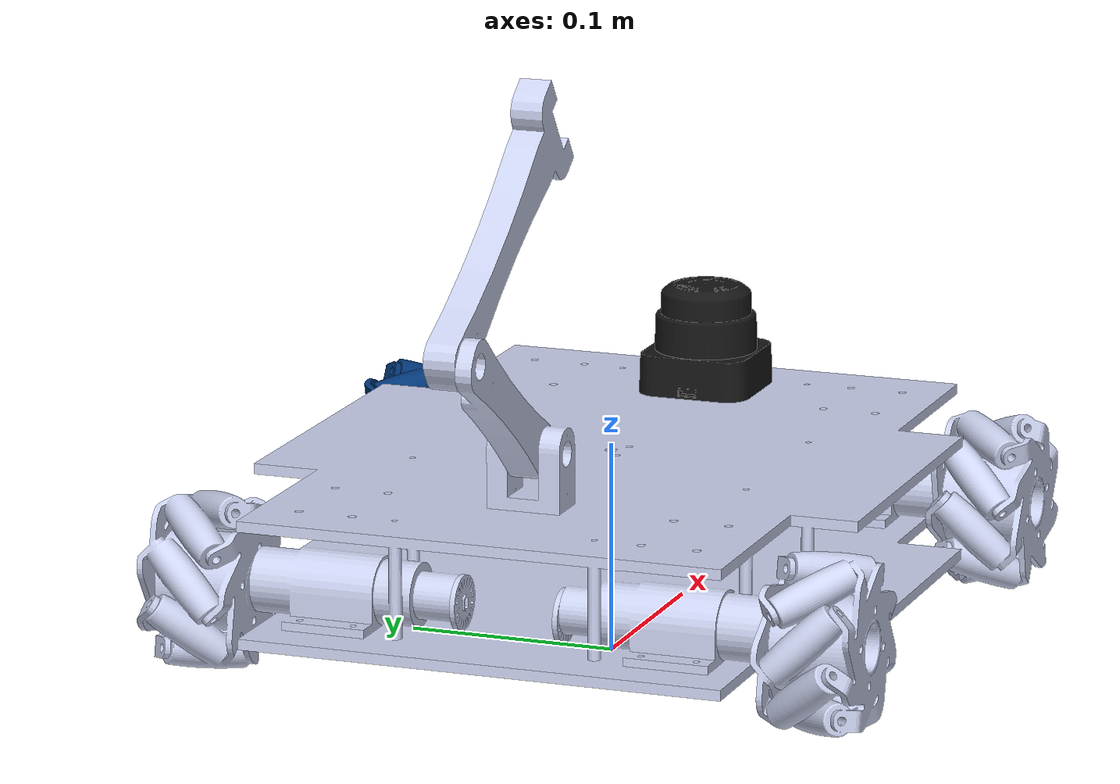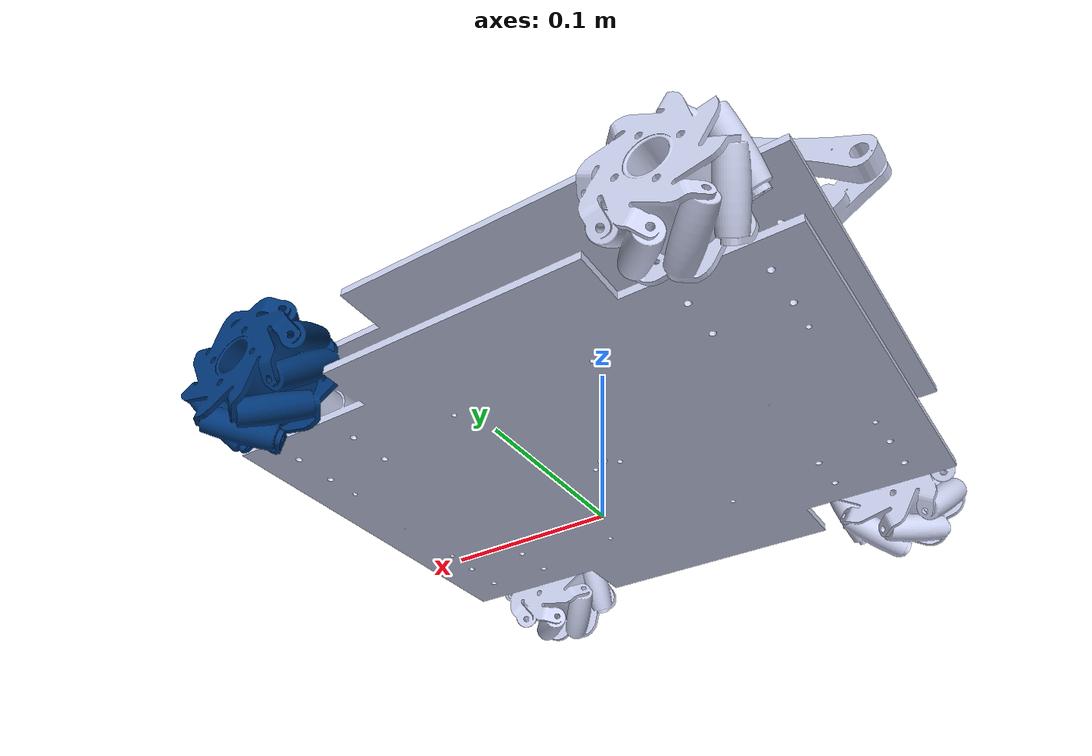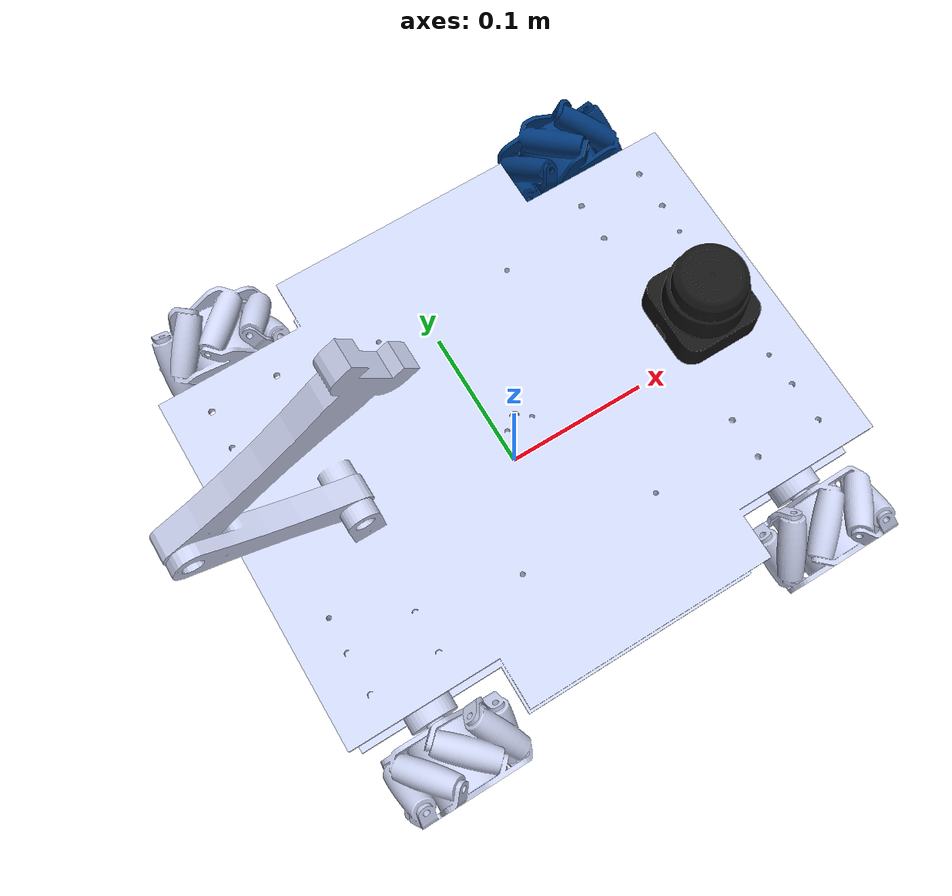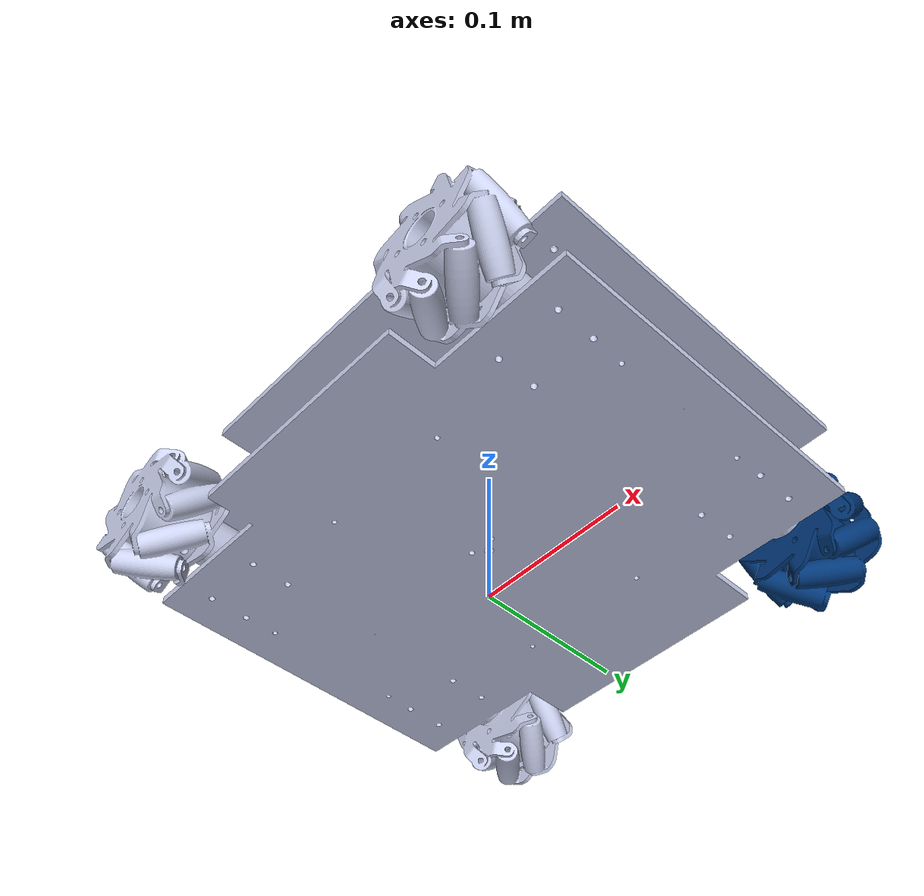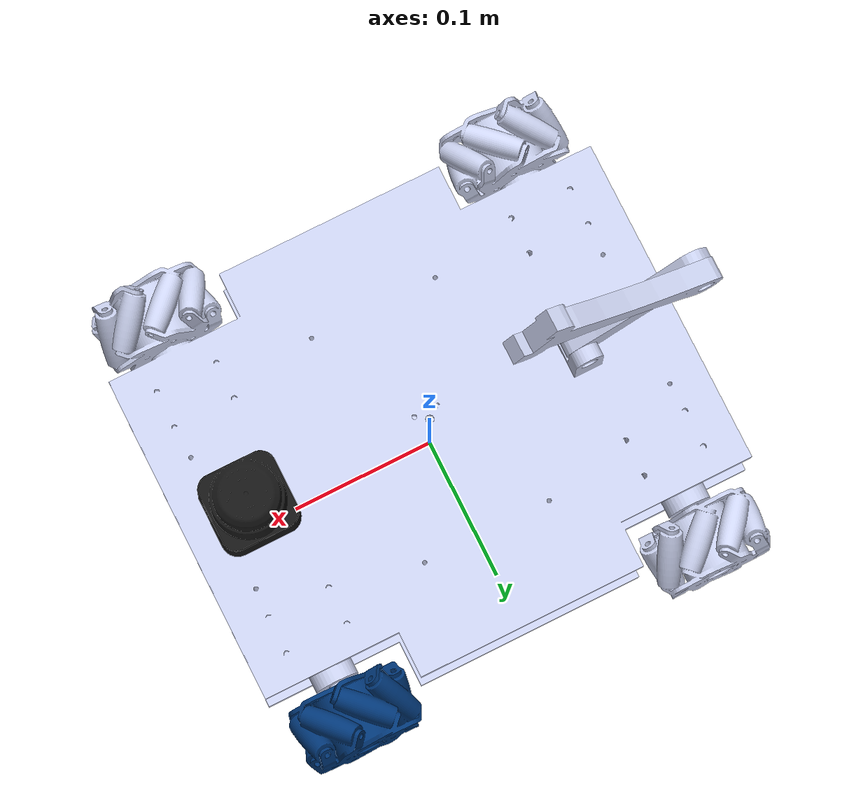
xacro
<?xml version="1.0"?>
<robot xmlns:xacro="http://www.ros.org/wiki/xacro" name="meca">

    <!-- ======================================= Model include  ====================================-->

    <!-- Base -->
    <xacro:include filename="$(find meca)/xacro/model/base/base.xacro"/>

    <!-- Wheel -->
    <xacro:include filename="$(find meca)/xacro/model/wheel/wheel.xacro"/>

    <!-- Wheel1 -->

    <!-- lidar -->
    <xacro:include filename="$(find meca)/xacro/model/sensor/lidar/lidar.xacro"/>

    <!-- imu -->
    <xacro:include filename="$(find meca)/xacro/model/sensor/imu/imu.xacro"/>

    <!-- encoder -->
    <xacro:include filename="$(find meca)/xacro/model/sensor/encoder/encoder.xacro"/>

    <!-- arm -->
    <xacro:include filename="$(find meca)/xacro/model/arm/arm.xacro"/>

    <!-- ======================================= Gazebo include  ====================================-->

    <!-- Transmission -->
    <xacro:include filename="$(find meca)/xacro/gazebo/transmission/transmission.xacro"/>

    <!-- Plugin -->
    <xacro:include filename="$(find meca)/xacro/gazebo/plugin/plugin.xacro"/>

    <!-- ======================================= Model Macro  ====================================-->

    <!-- Base -->
    <xacro:base/>

    <!-- Wheel -->
    <xacro:wheel/>

    <!-- Wheel1 -->

    <!-- RplidarA1 -->
    <xacro:lidar/>

    <!-- imu -->
    <xacro:imu/>

    <!-- encode -->

    <xacro:encoder/>

    <!-- arm -->
    <xacro:arm/>

    <!-- ======================================= Gazebo Macro  ====================================-->

    <!-- Transmission -->
    <xacro:transmission_gazebo/>

    <!-- Plugin -->
    <xacro:gazebo_plugin/>

</robot>

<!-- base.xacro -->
<robot xmlns:xacro="http://www.ros.org/wiki/xacro">
    <xacro:macro name="base">

        <link name="base_footprint"></link>

        <joint name="joint_base_footprint" type="fixed">
            <parent link="base_footprint"/>
            <child link="base_link"/>
            <origin xyz="0.0 0.0 0.037" rpy="0.0 0.0 0.0"/>
            <limit effort="5.0" velocity="10.0"/>
        </joint>

        <link name="base_link">
            <inertial>
                <origin xyz="-0.0012337 1.0003E-06 0.027856" rpy="0 0 0" />
                <mass value="1.2237" />
                <inertia ixx="0.0053566" ixy="3.6093E-10" ixz="6.2608E-22" iyy="0.0084415" iyz="6.2819E-22" izz="0.013752" />
            </inertial>
            <visual>
                <origin xyz="0 0 0" rpy="0 0 0" />
                <geometry>
                    <mesh filename="package://meca/meshes/base_link.STL" />
                </geometry>
                <material name="">
                    <color rgba="0.79216 0.81961 0.93333 1" />
                </material>
            </visual>
            <collision>
                <origin xyz="0 0 0" rpy="0 0 0" />
                <geometry>
                    <mesh filename="package://meca/meshes/base_link.STL" />
                </geometry>
            </collision>
        </link>
    </xacro:macro>

</robot>

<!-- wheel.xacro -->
<robot xmlns:xacro="http://www.ros.org/wiki/xacro">
  <!-- Macro định nghĩa Roller -->
  <xacro:macro name="wheel">
    <link name="link_left_forward1">
      <inertial>
        <origin xyz="1.0435E-06 4.8329E-05 -0.0023476" rpy="0 0 0" />
        <mass value="0.13253" />
        <inertia ixx="2.8353E-05" ixy="-4.1241E-08" ixz="-4.6777E-08" iyy="2.8355E-05" iyz="4.779E-08" izz="3.4561E-05" />
      </inertial>
      <visual>
        <origin xyz="0 0 0" rpy="0 0 0" />
        <geometry>
          <mesh filename="package://meca/meshes/link_left_forward.STL" />
        </geometry>
        <material name="">
          <color rgba="0 0.21176 0.46667 1" />
        </material>
      </visual>
      <collision>
        <origin xyz="0 0 0" rpy="0 0 0" />
        <geometry>
          <mesh filename="package://meca/meshes/link_left_forward.STL" />
        </geometry>
        <geometry>
          <cylinder>
            <radius>0.05</radius>
            <length>0.02</length>
          </cylinder>
        </geometry>
        <surface>
          <friction>
            <ode>
              <mu>1.5</mu>
              <mu2>0.5</mu2>
            </ode>
          </friction>
        </surface>
        <contact>
          <ode>
            <soft_cfm>0.01</soft_cfm>
            <soft_erp>0.8</soft_erp>
            <kp>1000000</kp>
            <kd>10</kd>
            <max_vel>100.0</max_vel>
            <min_depth>0.001</min_depth>
          </ode>
        </contact>
      </collision>
    </link>
    <joint name="joint_left_forward1" type="continuous">
      <origin xyz="0.12762 0.14948 0.017" rpy="-1.5708 0 0" />
      <parent link="base_link" />
      <child link="link_left_forward1" />
      <axis xyz="0 0 1" />
      <limit effort="20.0" velocity="30.0"/>
    </joint>
    <link name="link_left_back1">
      <inertial>
        <origin xyz="4.3774E-05 2.0509E-05 -0.0023476" rpy="0 0 0" />
        <mass value="0.13253" />
        <inertia ixx="2.8322E-05" ixy="2.5704E-08" ixz="2.2072E-08" iyy="2.8387E-05" iyz="6.3125E-08" izz="3.4561E-05" />
      </inertial>
      <visual>
        <origin xyz="0 0 0" rpy="0 0 0" />
        <geometry>
          <mesh filename="package://meca/meshes/link_left_back.STL" />
        </geometry>
        <material name="">
          <color rgba="0.79216 0.81961 0.93333 1" />
        </material>
      </visual>
      <collision>
        <origin xyz="0 0 0" rpy="0 0 0" />
        <geometry>
          <mesh filename="package://meca/meshes/link_left_back.STL" />
        </geometry>
        <geometry>
          <cylinder>
            <radius>0.05</radius>
            <length>0.02</length>
          </cylinder>
        </geometry>
        <surface>
          <friction>
            <ode>
              <mu>1.5</mu>
              <mu2>0.5</mu2>
            </ode>
          </friction>
        </surface>
        <contact>
          <ode>
            <soft_cfm>0.01</soft_cfm>
            <soft_erp>0.8</soft_erp>
            <kp>1000000</kp>
            <kd>10</kd>
            <max_vel>100.0</max_vel>
            <min_depth>0.001</min_depth>
          </ode>
        </contact>
      </collision>
    </link>
    <joint name="joint_left_back1" type="continuous">
      <origin xyz="-0.12797 0.14948 0.017" rpy="-1.5708 0 0" />
      <parent link="base_link" />
      <child link="link_left_back1" />
      <axis xyz="0 0 1" />
      <limit effort="20.0" velocity="30.0"/>
    </joint>
    <link name="link_right_back1">
      <inertial>
        <origin xyz="1.0435E-06 -4.8329E-05 0.0023476" rpy="0 0 0" />
        <mass value="0.13253" />
        <inertia ixx="2.8353E-05" ixy="4.1241E-08" ixz="4.6777E-08" iyy="2.8355E-05" iyz="4.779E-08" izz="3.4561E-05" />
      </inertial>
      <visual>
        <origin xyz="0 0 0" rpy="0 0 0" />
        <geometry>
          <mesh filename="package://meca/meshes/link_right_back.STL" />
        </geometry>
        <material name="">
          <color rgba="0.79216 0.81961 0.93333 1" />
        </material>
      </visual>
      <collision>
        <origin xyz="0 0 0" rpy="0 0 0" />
        <geometry>
          <mesh filename="package://meca/meshes/link_right_back.STL" />
        </geometry>
        <geometry>
          <cylinder>
            <radius>0.05</radius>
            <length>0.02</length>
          </cylinder>
        </geometry>
        <surface>
          <friction>
            <ode>
              <mu>1.5</mu>
              <mu2>0.5</mu2>
            </ode>
          </friction>
        </surface>
        <contact>
          <ode>
            <soft_cfm>0.01</soft_cfm>
            <soft_erp>0.8</soft_erp>
            <kp>1000000</kp>
            <kd>10</kd>
            <max_vel>100.0</max_vel>
            <min_depth>0.001</min_depth>
          </ode>
        </contact>
      </collision>
    </link>
    <joint name="joint_right_back1" type="continuous">
      <origin xyz="-0.12884 -0.14948 0.017" rpy="-1.5708 0 0" />
      <parent link="base_link" />
      <child link="link_right_back1" />
      <axis xyz="0 0 1" />
      <limit effort="20.0" velocity="30.0"/>
    </joint>
    <link name="link_right_forward1">
      <inertial>
        <origin xyz="4.3774E-05 -2.0509E-05 0.0023476" rpy="0 0 0" />
        <mass value="0.13253" />
        <inertia ixx="2.8322E-05" ixy="-2.5704E-08" ixz="-2.2072E-08" iyy="2.8387E-05" iyz="6.3125E-08" izz="3.4561E-05" />
      </inertial>
      <visual>
        <origin xyz="0 0 0" rpy="0 0 0" />
        <geometry>
          <mesh filename="package://meca/meshes/link_right_forward.STL" />
        </geometry>
        <material name="">
          <color rgba="0.79216 0.81961 0.93333 1" />
        </material>
      </visual>
      <collision>
        <origin xyz="0 0 0" rpy="0 0 0" />
        <geometry>
          <mesh filename="package://meca/meshes/link_right_forward.STL" />
        </geometry>
        <geometry>
          <cylinder>
            <radius>0.05</radius>
            <length>0.02</length>
          </cylinder>
        </geometry>
        <surface>
          <friction>
            <ode>
              <mu>1.5</mu>
              <mu2>0.5</mu2>
            </ode>
          </friction>
        </surface>
        <contact>
          <ode>
            <soft_cfm>0.01</soft_cfm>
            <soft_erp>0.8</soft_erp>
            <kp>1000000</kp>
            <kd>10</kd>
            <max_vel>100.0</max_vel>
            <min_depth>0.001</min_depth>
          </ode>
        </contact>
      </collision>
    </link>
    <joint name="joint_right_forward1" type="continuous">
      <origin xyz="0.12849 -0.14948 0.017" rpy="-1.5708 0 0" />
      <parent link="base_link" />
      <child link="link_right_forward1" />
      <axis xyz="0 0 1" />
      <limit effort="20.0" velocity="30.0"/>
    </joint>

  </xacro:macro>

</robot>

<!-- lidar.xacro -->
<robot xmlns:xacro="http://www.ros.org/wiki/xacro">
    <xacro:macro name="lidar">
        <link name="link_lidar">
            <inertial>
                <origin xyz="-0.00020012 4.1715E-07 0.032146" rpy="0 0 0" />
                <mass value="0.0094944" />
                <inertia ixx="3.8153E-06" ixy="2.9012E-11" ixz="-8.0883E-10" iyy="3.8141E-06" iyz="-2.0759E-11" izz="4.9345E-06" />
            </inertial>
            <visual>
                <origin xyz="0 0 0" rpy="0 0 0" />
                <geometry>
                    <mesh filename="package://meca/meshes/link_lidar.STL" />
                </geometry>
                <material name="">
                    <color rgba="0.082353 0.082353 0.082353 1" />
                </material>
            </visual>
            <collision>
                <origin xyz="0 0 0" rpy="0 0 0" />
                <geometry>
                    <mesh filename="package://meca/meshes/link_lidar.STL" />
                </geometry>
            </collision>
        </link>
        <joint name="joint_lidar" type="fixed">
            <origin xyz="0.12893 -0.0016914 0.0598" rpy="0 0 0" />
            <parent link="base_link" />
            <child link="link_lidar" />
            <axis xyz="0 0 0" />
            <limit effort="5.0" velocity="10.0"/>
        </joint>
    </xacro:macro>
</robot>

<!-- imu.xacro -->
<robot xmlns:xacro="http://www.ros.org/wiki/xacro">
    <xacro:macro name="imu">
        <link name="link_imu">
            <inertial>
                <origin xyz="-7.5244E-05 -0.0020556 -7.7593E-06" rpy="0 0 0" />
                <mass value="0.00054834" />
                <inertia ixx="8.6846E-09" ixy="-6.071E-11" ixz="4.4622E-11" iyy="1.9443E-08" iyz="-8.0543E-11" izz="2.6482E-08" />
            </inertial>
            <visual>
                <origin xyz="0 0 0" rpy="0 0 0" />
                <geometry>
                    <mesh filename="package://meca/meshes/link_imu.STL" />
                </geometry>
                <material name="">
                    <color rgba="0.79216 0.81961 0.93333 1" />
                </material>
            </visual>
            <collision>
                <origin xyz="0 0 0" rpy="0 0 0" />
                <geometry>
                    <mesh filename="package://meca/meshes/link_imu.STL" />
                </geometry>
            </collision>
        </link>
        <joint name="joint_imu" type="fixed">
            <origin xyz="-8.8046E-05 -0.011773 0.02" rpy="0 0 0" />
            <parent link="base_link" />
            <child link="link_imu" />
            <axis xyz="0 0 0" />
            <limit effort="5.0" velocity="10.0"/>
        </joint>
    </xacro:macro>
</robot>

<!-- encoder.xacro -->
<robot xmlns:xacro="http://www.ros.org/wiki/xacro">
    <xacro:macro name="encoder">

        <link name="encoder_left_forward_link">
            <inertial>
                <origin xyz="0 -3.4694E-18 0.0012195" rpy="0 0 0" />
                <mass value="0.0011046" />
                <inertia ixx="4.6057E-08" ixy="-9.381E-13" ixz="-1.7536E-24" iyy="4.6073E-08" iyz="2.5318E-25" izz="9.0881E-08" />
            </inertial>
            <visual>
                <origin xyz="0 0 0" rpy="0 0 0" />
                <geometry>
                    <mesh filename="package://meca/meshes/encoder_left_forward_link.STL" />
                </geometry>
                <material name="">
                    <color rgba="0.79216 0.81961 0.93333 1" />
                </material>
            </visual>
            <collision>
                <origin xyz="0 0 0" rpy="0 0 0" />
                <geometry>
                    <mesh filename="package://meca/meshes/encoder_left_forward_link.STL" />
                </geometry>
            </collision>
        </link>
        <joint name="encoder_left_forward_joint" type="continuous">
            <origin xyz="0.000879827951730972 -0.00142956283466865 -0.12605" rpy="0 0 0" />
            <parent link="link_left_forward1" />
            <child link="encoder_left_forward_link" />
            <axis xyz="0 0 1" />

        </joint>

        <link name="encoder_left_back_link">
            <inertial>
                <origin xyz="0 6.93889390390723E-18 0.00121951468354635" rpy="0 0 0" />
                <mass value="0.00110455234746961" />
                <inertia ixx="4.60573417540729E-08" ixy="9.38099743416329E-13" ixz="-1.86169766614336E-24" iyy="4.60729731271229E-08" iyz="-9.59486697287092E-25" izz="9.08807746771234E-08" />
            </inertial>
            <visual>
                <origin xyz="0 0 0" rpy="0 0 0" />
                <geometry>
                    <mesh filename="package://meca/meshes/encoder_left_back_link.STL" />
                </geometry>
                <material name="">
                    <color rgba="0.792156862745098 0.819607843137255 0.933333333333333 1" />
                </material>
            </visual>
            <collision>
                <origin xyz="0 0 0" rpy="0 0 0" />
                <geometry>
                    <mesh filename="package://meca/meshes/encoder_left_back_link.STL" />
                </geometry>
            </collision>
        </link>
        <joint name="encoder_left_back_joint" type="continuous">
            <origin xyz="-0.000744846301707347 -0.00151335080252251 -0.12605" rpy="0 0 0" />
            <parent link="link_left_back1" />
            <child link="encoder_left_back_link" />
            <axis xyz="0 0 1" />

        </joint>

        <link name="encoder_right_back_link">
            <inertial>
                <origin xyz="0 0 -0.0012195" rpy="0 0 0" />
                <mass value="0.0011046" />
                <inertia ixx="4.6057E-08" ixy="9.381E-13" ixz="-1.6658E-23" iyy="4.6073E-08" iyz="2.8857E-25" izz="9.0881E-08" />
            </inertial>
            <visual>
                <origin xyz="0 0 0" rpy="0 0 0" />
                <geometry>
                    <mesh filename="package://meca/meshes/encoder_right_back_link.STL" />
                </geometry>
                <material name="">
                    <color rgba="0.79216 0.81961 0.93333 1" />
                </material>
            </visual>
            <collision>
                <origin xyz="0 0 0" rpy="0 0 0" />
                <geometry>
                    <mesh filename="package://meca/meshes/encoder_right_back_link.STL" />
                </geometry>
            </collision>
        </link>
        <joint name="encoder_right_back_joint" type="continuous">
            <origin xyz="0.000125240091175149 -0.00011164957998884 0.12605" rpy="0 0 0" />
            <parent link="link_right_back1" />
            <child link="encoder_right_back_link" />
            <axis xyz="0 0 1" />

        </joint>

        <link name="encoder_right_forward_link">
            <inertial>
                <origin xyz="0 6.9389E-18 3.0485E-05" rpy="0 0 0" />
                <mass value="0.0011046" />
                <inertia ixx="4.6057E-08" ixy="-9.381E-13" ixz="1.0944E-23" iyy="4.6073E-08" iyz="1.1236E-24" izz="9.0881E-08" />
            </inertial>
            <visual>
                <origin xyz="0 0 0" rpy="0 0 0" />
                <geometry>
                    <mesh filename="package://meca/meshes/encoder_right_forward_link.STL" />
                </geometry>
                <material name="">
                    <color rgba="0.79216 0.81961 0.93333 1" />
                </material>
            </visual>
            <collision>
                <origin xyz="0 0 0" rpy="0 0 0" />
                <geometry>
                    <mesh filename="package://meca/meshes/encoder_right_forward_link.STL" />
                </geometry>
            </collision>
        </link>
        <joint name="encoder_right_forward_joint" type="continuous">
            <origin xyz="0 -2.78616121349856E-05 0.1248" rpy="0 0 0" />
            <parent link="link_right_forward1" />
            <child link="encoder_right_forward_link" />
            <axis xyz="0 0 1" />

        </joint>

    </xacro:macro>
</robot>

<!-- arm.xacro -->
<robot xmlns:xacro="http://www.ros.org/wiki/xacro">

    <!-- Định nghĩa các thuộc tính chung -->
    <xacro:property name="arm_color" value="0.792 0.820 0.933 1" />
    <xacro:property name="joint_limit" value="1.5707" />

    <xacro:macro name="arm">
        <link name="link_arm1">
            <inertial>
                <origin xyz="-0.0351 -0.0254 -0.0081" rpy="0 0 0" />
                <mass value="0.0293" />
                <inertia ixx="1.09e-5" ixy="-1.28e-5" ixz="-6.88e-7"
                         iyy="1.94e-5" iyz="-4.97e-7" izz="2.92e-5" />
            </inertial>
            <visual>
                <origin xyz="0 0 0" rpy="0 0 0" />
                <geometry>
                    <mesh filename="package://meca/meshes/link_arm1.STL" />
                </geometry>
                <material name="arm_material">
                    <color rgba="${arm_color}" />
                </material>
            </visual>
            <collision>
                <origin xyz="0 0 0" rpy="0 0 0" />
                <geometry>
                    <mesh filename="package://meca/meshes/link_arm1.STL" />
                </geometry>
            </collision>
        </link>

        <joint name="joint_arm1" type="revolute">
            <origin xyz="-0.10596 0.0075 0.086" rpy="-1.5708 0 0" />
            <parent link="base_link" />
            <child link="link_arm1" />
            <axis xyz="0 0 1" />
            <limit lower="-${joint_limit}" upper="${joint_limit}" effort="100" velocity="100.0" />
            <dynamics damping="0.1" friction="0.2"/>
            <limit effort="5.0" velocity="10.0"/>
        </joint>

        <link name="link_arm2">
            <inertial>
                <origin xyz="0.0664 -0.0461 0.0075" rpy="0 0 0" />
                <mass value="0.0508" />
                <inertia ixx="4.23e-5" ixy="5.38e-5" ixz="0"
                         iyy="8.25e-5" iyz="0" izz="1.22e-4" />
            </inertial>
            <visual>
                <origin xyz="0 0 0" rpy="0 0 0" />
                <geometry>
                    <mesh filename="package://meca/meshes/link_arm2.STL" />
                </geometry>
                <material name="arm_material">
                    <color rgba="${arm_color}" />
                </material>
            </visual>
            <collision>
                <origin xyz="0 0 0" rpy="0 0 0" />
                <geometry>
                    <mesh filename="package://meca/meshes/link_arm2.STL" />
                </geometry>
            </collision>
        </link>

        <joint name="joint_arm2" type="revolute">
            <origin xyz="-0.0810 -0.0586 -0.0075" rpy="0 0 0" />
            <parent link="link_arm1" />
            <child link="link_arm2" />
            <axis xyz="0 0 1" />
            <limit lower="-${joint_limit}" upper="${joint_limit}" effort="100" velocity="100.0" />
            <dynamics damping="0.1" friction="0.2"/>
            <limit effort="5.0" velocity="10.0"/>
        </joint>

    </xacro:macro>

</robot>
